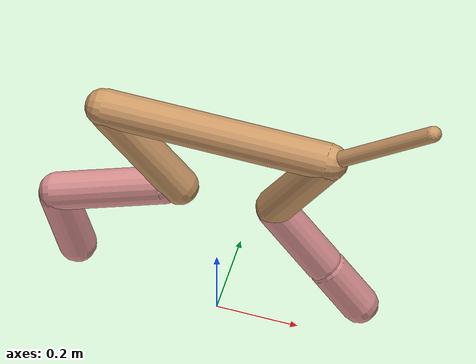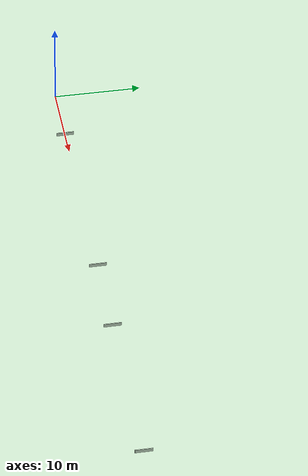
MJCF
<mujoco model="cheetah">
  <compiler angle="radian" coordinate="local" inertiafromgeom="true" settotalmass="14"/>
  <default>
    <joint armature=".1" damping=".01" limited="true" solimplimit="0 .8 .03" solreflimit=".02 1" stiffness="8"/>
    <geom conaffinity="0" condim="3" contype="1" friction=".4 .1 .1" rgba="0.8 0.6 .4 1" solimp="0.0 0.8 0.01" solref="0.02 1"/>
    <motor ctrllimited="true" ctrlrange="-1 1"/>
  </default>
  <size nstack="300000" nuser_geom="1"/>
  <option gravity="0 0 -9.81" timestep="0.01"/>
  <asset>
    <texture builtin="gradient" height="100" rgb1="1 1 1" rgb2="0 0 0" type="skybox" width="100"/>
    <texture builtin="flat" height="1278" mark="cross" markrgb="1 1 1" name="texgeom" random="0.01" rgb1="0.8 0.6 0.4" rgb2="0.8 0.6 0.4" type="cube" width="127"/>
    <texture builtin="flat" height="100" name="block-texture" rgb1="0.302 0.157 0.004" rgb2="0.302 0.157 0.004" type="2d" width="400"/>
    <texture builtin="flat" height="100" name="texplane" rgb1="0.2 0.3 0.4" type="2d" width="400"/>
    <material name="MatPlane" reflectance="0.5" shininess="1" specular="1" texrepeat="2000 2000" texture="texplane"/>
    <material name="block" reflectance="0.5" shininess="1" specular="1" texrepeat="60 1" texture="block-texture"/>
    <material name="geom" texture="texgeom" texuniform="true"/>
  </asset>
  <worldbody>
   <camera name='sample2' mode ='fixed' target ='torso' pos = '-1000 -1000 -2000' quat = '1 0 2 0.5'/>
    <light cutoff="100" diffuse="1 1 1" dir="-0 0 -1.3" directional="true" exponent="1" pos="0 0 1.3" specular=".1 .1 .1"/>
    <geom conaffinity="1" condim="3" material="MatPlane" name="floor" pos="0 0 0" rgba="0.8 0.9 0.8 1" size="1000 1000 1000" type="plane"/>
    <body name="torso" pos="0 0 .7">
      <camera name="track" mode="trackcom" pos="0 -12 1.2" xyaxes="1 0 0 0 0 1"/>
      <joint armature="0" axis="1 0 0" damping="0" limited="false" name="rootx" pos="0 0 0" stiffness="0" type="slide"/>
      <joint armature="0" axis="0 0 1" damping="0" limited="false" name="rootz" pos="0 0 0" stiffness="0" type="slide"/>
      <joint armature="0" axis="0 1 0" damping="0" limited="false" name="rooty" pos="0 0 0" stiffness="0" type="hinge"/>
      <geom fromto="-.28 0 0 .28 0 0" name="torso" size="0.046" type="capsule"/>
      <geom axisangle="0 1 0 .87" name="head" pos=".4 0 .1" size="0.02 .18" type="capsule"/>
      <body name="bthigh" pos="-.28 0 0">
        <joint axis="0 1 0" damping="6" name="bthigh" pos="0 0 0" range="-.52 1.05" stiffness="240" type="hinge"/>
        <geom axisangle="0 1 0 -3.8" name="bthigh" pos=".1 0 -.13" size="0.046 .145" type="capsule"/>
        <body name="bshin" pos=".16 0 -.25">
          <joint axis="0 1 0" damping="4.5" name="bshin" pos="0 0 0" range="-.785 .785" stiffness="180" type="hinge"/>
          <geom axisangle="0 1 0 -2.03" name="bshin" pos="-.14 0 -.07" rgba="0.9 0.6 0.6 1" size="0.046 .15" type="capsule"/>
          <body name="bfoot" pos="-.28 0 -.14">
            <joint axis="0 1 0" damping="3" name="bfoot" pos="0 0 0" range="-.4 .785" stiffness="120" type="hinge"/>
            <geom axisangle="0 1 0 -.27" name="bfoot" pos=".03 0 -.097" rgba="0.9 0.6 0.6 1" size="0.046 .094" type="capsule"/>
          </body>
        </body>
      </body>
      <body name="fthigh" pos=".28 0 0">
        <joint axis="0 1 0" damping="4.5" name="fthigh" pos="0 0 0" range="-1 .7" stiffness="180" type="hinge"/>
        <geom axisangle="0 1 0 .52" name="fthigh" pos="-.07 0 -.12" size="0.046 .133" type="capsule"/>
        <body name="fshin" pos="-.14 0 -.24">
          <joint axis="0 1 0" damping="3" name="fshin" pos="0 0 0" range="-1.2 .87" stiffness="120" type="hinge"/>
          <geom axisangle="0 1 0 -.6" name="fshin" pos=".065 0 -.09" rgba="0.9 0.6 0.6 1" size="0.046 .106" type="capsule"/>
          <body name="ffoot" pos=".13 0 -.18">
            <joint axis="0 1 0" damping="1.5" name="ffoot" pos="0 0 0" range="-.5 .5" stiffness="60" type="hinge"/>
            <geom axisangle="0 1 0 -.6" name="ffoot" pos=".045 0 -.07" rgba="0.9 0.6 0.6 1" size="0.046 .07" type="capsule"/>
          </body>
        </body>
      </body>
    </body>
    <!-- BEGIN CUSTOM -->
    <geom conaffinity="1" condim="3" material="block" name="hurdle-1" pos="7 0 0.20" rgba="0.8 0.9 0.8 1" size=".05 1 0.2" type="box"/>
    <geom conaffinity="1" condim="3" material="block" name="hurdle-2" pos="30 0 0.20" rgba="0.8 0.9 0.8 1" size=".05 1 0.2" type="box"/>
    <geom conaffinity="1" condim="3" material="block" name="hurdle-3" pos="40 0 0.20" rgba="0.8 0.9 0.8 1" size=".05 1 0.2" type="box"/>
    <geom conaffinity="1" condim="3" material="block" name="hurdle-4" pos="60 0 0.20" rgba="0.8 0.9 0.8 1" size=".05 1 0.2" type="box"/>
    <geom conaffinity="1" condim="3" material="block" name="hurdle-5" pos="85 0 0.20" rgba="0.8 0.9 0.8 1" size=".05 1 0.2" type="box"/>
    <geom conaffinity="1" condim="3" material="block" name="hurdle-6" pos="135 0 0.20" rgba="0.8 0.9 0.8 1" size=".05 1 0.2" type="box"/>
    <geom conaffinity="1" condim="3" material="block" name="hurdle-7" pos="160 0 0.20" rgba="0.8 0.9 0.8 1" size=".05 1 0.21" type="box"/>
    <geom conaffinity="1" condim="3" material="block" name="hurdle-8" pos="180 0 0.20" rgba="0.8 0.9 0.8 1" size=".05 1 0.21" type="box"/>
    <geom conaffinity="1" condim="3" material="block" name="hurdle-9" pos="220 0 0.20" rgba="0.8 0.9 0.8 1" size=".05 1 0.22" type="box"/>
    <geom conaffinity="1" condim="3" material="block" name="hurdle-10" pos="260 0 0.20" rgba="0.8 0.9 0.8 1" size=".05 1 0.22" type="box"/>
    <geom name="target" pos="300.0 0 0.2" rgba="0 1 0 1" type="box" size="0.2 0.2 0.2"/>
    <!-- END CUSTOM -->
  </worldbody>
  <actuator>
    <motor gear="120" joint="bthigh" name="bthigh"/>
    <motor gear="90" joint="bshin" name="bshin"/>
    <motor gear="60" joint="bfoot" name="bfoot"/>
    <motor gear="120" joint="fthigh" name="fthigh"/>
    <motor gear="60" joint="fshin" name="fshin"/>
    <motor gear="30" joint="ffoot" name="ffoot"/>
  </actuator>
</mujoco>
